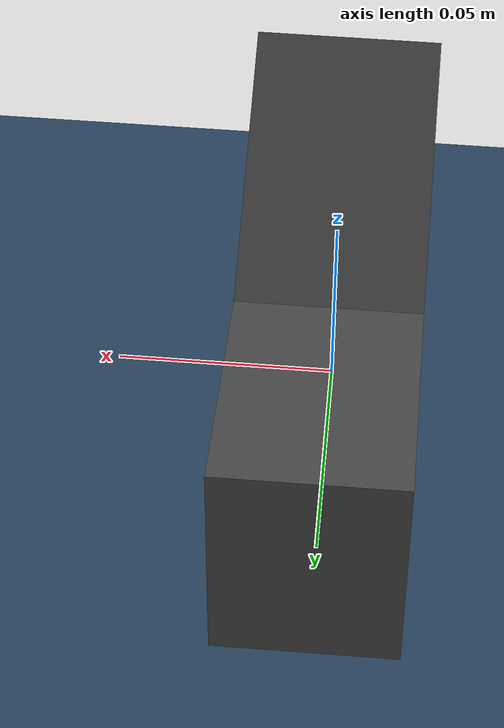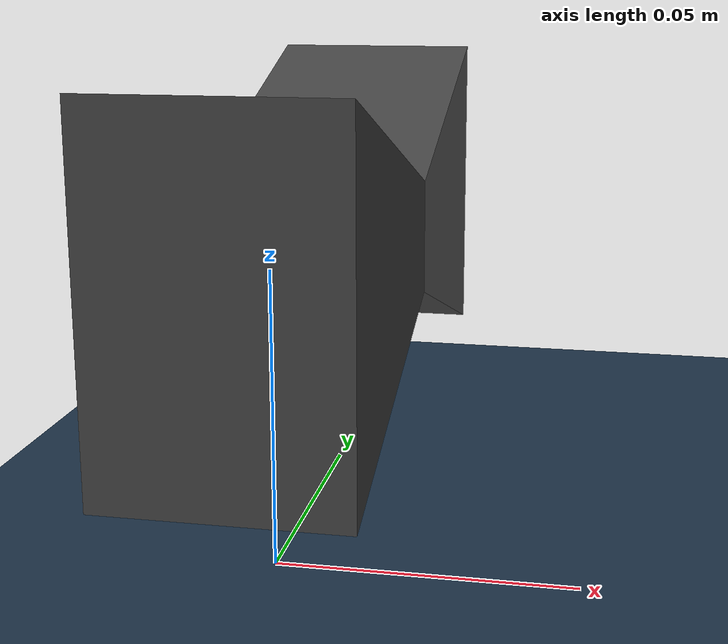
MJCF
<mujoco model="minicube">
    <option timestep="0.005" />

    <visual>
        <rgba haze="0.15 0.25 0.35 1"/>
        <global azimuth="120" elevation="-20"/>
    </visual>

    <asset>
        <texture type="skybox" builtin="gradient" rgb1=".3 .5 .7" rgb2="0 0 0" width="32" height="512"/>
        <texture name="grid" type="2d" builtin="checker" rgb1=".1 .2 .3" rgb2=".2 .3 .4" width="300" height="300" mark="edge" markrgb=".2 .3 .4"/>
        <material name="grid" texture="grid" texrepeat="1 1" texuniform="true" reflectance=".2"/>

        <!-- Definimos la malla del trapecio: ancho en Y=-0.03, estrecho en Y=0.03 -->
        <mesh name="trapezoid_mesh" vertex="-0.02 -0.03 -0.03
                                            0.02 -0.03 -0.03
                                            -0.02 -0.03 0.03
                                            0.02 -0.03 0.03
                                            -0.02 0.03 -0.01
                                            0.02 0.03 -0.01
                                            -0.02 0.03 0.01
                                            0.02 0.03 0.01"/>
    </asset>

    <worldbody>
        <light pos="0 0 1.5" dir="0 0 -1" directional="true"/>
        <geom name="floor" type="plane" size="0 0 .05" material="grid" condim="3"/>

        <!-- Primer eslabón (Trapecio 1, parte estrecha hacia +Y) -->
        <body name="link1" pos="0 0 0.05">
            <freejoint/>
            <geom type="mesh" mesh="trapezoid_mesh" rgba="0.2 0.2 0.2 1" mass="0.1"/>

            <!-- Segundo eslabón (Trapecio 2, parte estrecha hacia -Y) -->
            <body name="link2" pos="0 0.06 0">
                <!-- Joint en la unión de ambas partes estrechas (-0.03 respecto al centro de link2) -->
                <joint name="servo_joint" type="hinge" pos="0 -0.03 0" axis="1 0 0" range="-90 90" limited="true" damping="0.01"/>
                <!-- Rotamos la malla 180 grados en Z para que la parte estrecha apunte hacia link1 -->
                <geom type="mesh" mesh="trapezoid_mesh" euler="0 0 180" rgba="0.3 0.3 0.3 1" mass="0.1"/>
            </body>
        </body>
    </worldbody>

    <actuator>
        <position joint="servo_joint" name="servo_actuator" kp="1.0" ctrlrange="-1 0.2" ctrllimited="true"/>
    </actuator>
</mujoco>
